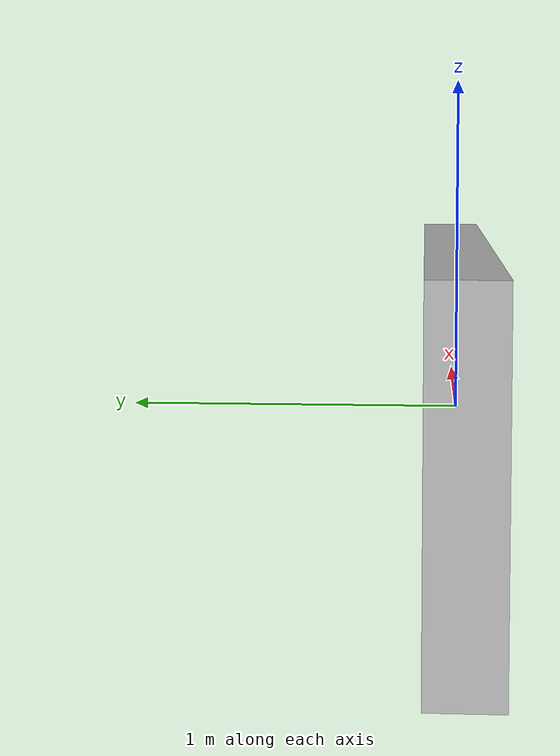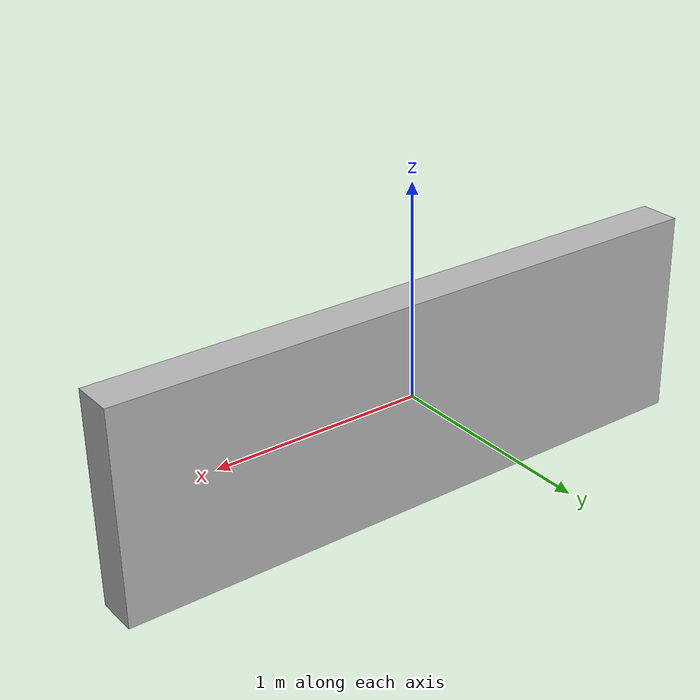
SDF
<?xml version='1.0'?>
<sdf version='1.6'>
  <model name='room1_wall1'>
    <static>true</static>
    <link name='link'>
      <collision name='collision'>
        <geometry><box><size>3 0.2 1.0</size></box></geometry>
      </collision>
      <visual name='visual'>
        <geometry><box><size>3 0.2 1.0</size></box></geometry>
      </visual>
    </link>
  </model>
</sdf>
